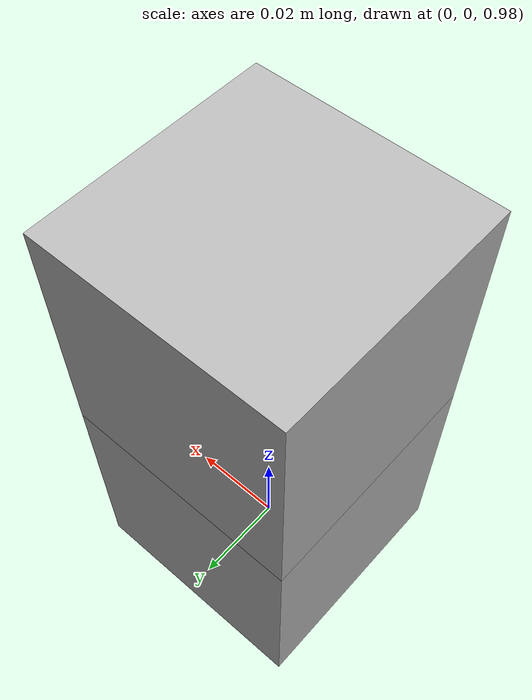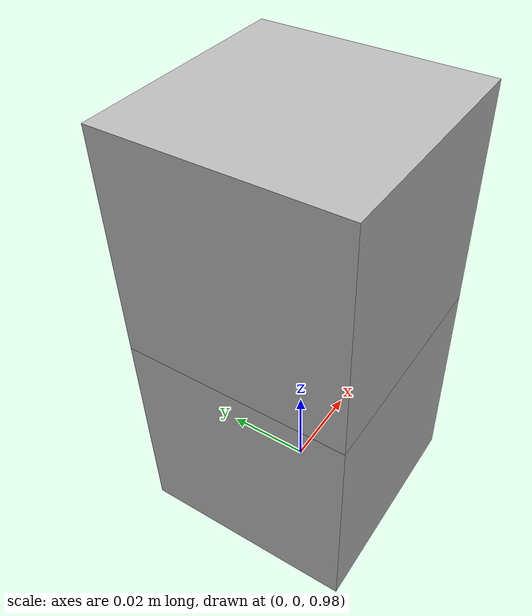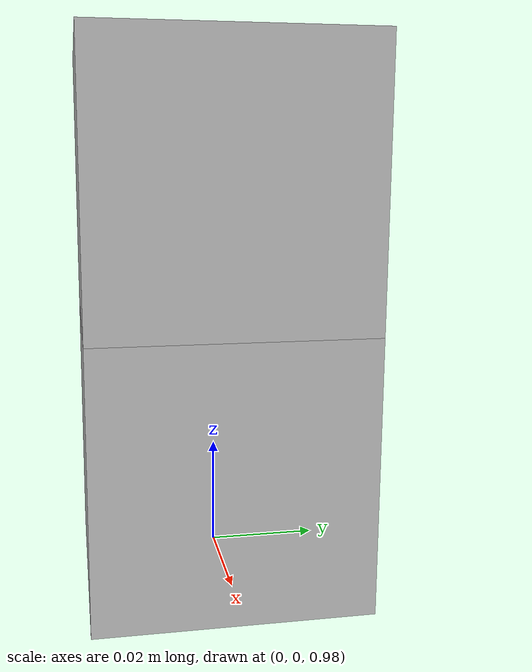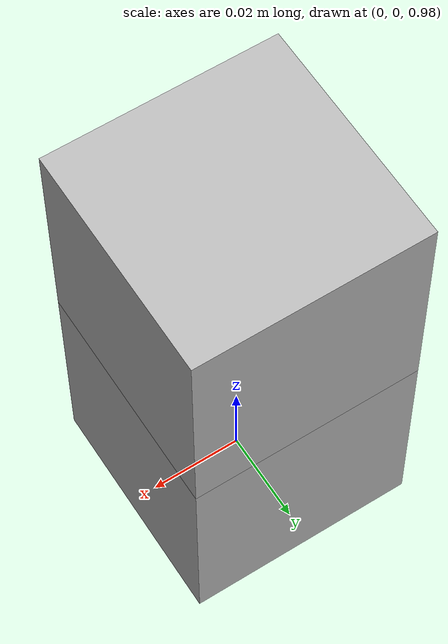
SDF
<?xml version="1.0" ?>
<sdf version="1.5">
  <model name="breakable_test">
    <pose>0 0 1 0 0 0</pose>
    <link name="link_0_0">
      <pose>0.0 0 0.0 0 0 0</pose>
      <inertial>
        <mass>0.3375</mass>
        <inertia>
          <ixx>0.00014062500000000004</ixx>
          <iyy>0.00014062500000000004</iyy>
          <izz>0.00014062500000000004</izz>
          <ixy>0.0</ixy>
          <ixz>0.0</ixz>
          <iyz>0.0</iyz>
        </inertia>
      </inertial>
      <collision name="collision">
        <geometry>
          <box>
            <size>0.05 0.05 0.05</size>
          </box>
        </geometry>
      </collision>
      <visual name="visual">
        <geometry>
          <box>
            <size>0.05 0.05 0.05</size>
          </box>
        </geometry>
      </visual>
    </link>
    <joint name="joint_0_0" type="revolute">
      <parent>world</parent>
      <child>link_0_0</child>
      <axis>
        <xyz>0 0 1</xyz>
        <limit>
          <lower>0.0</lower>
          <upper>0.0</upper>
        </limit>
        <use_parent_model_frame>true</use_parent_model_frame>
      </axis>
      <physics>
        <ode>
          <erp>1</erp>
          <cfm>1</cfm>
        </ode>
      </physics>
      <sensor name="force_torque" type="force_torque">
        <always_on>true</always_on>
        <update_rate>1000</update_rate>
        <plugin name="breakable_0_0" filename="libBreakableJointPlugin.so">
          <breaking_force_N>50</breaking_force_N>
        </plugin>
      </sensor>
    </joint>
    <link name="link_0_1">
      <pose>0.0 0 0.05 0 0 0</pose>
      <inertial>
        <mass>0.3375</mass>
        <inertia>
          <ixx>0.00014062500000000004</ixx>
          <iyy>0.00014062500000000004</iyy>
          <izz>0.00014062500000000004</izz>
          <ixy>0.0</ixy>
          <ixz>0.0</ixz>
          <iyz>0.0</iyz>
        </inertia>
      </inertial>
      <collision name="collision">
        <geometry>
          <box>
            <size>0.05 0.05 0.05</size>
          </box>
        </geometry>
      </collision>
      <visual name="visual">
        <geometry>
          <box>
            <size>0.05 0.05 0.05</size>
          </box>
        </geometry>
      </visual>
    </link>
    <joint name="joint_0_1" type="revolute">
      <parent>world</parent>
      <child>link_0_1</child>
      <axis>
        <xyz>0 0 1</xyz>
        <limit>
          <lower>0.0</lower>
          <upper>0.0</upper>
        </limit>
        <use_parent_model_frame>true</use_parent_model_frame>
      </axis>
      <physics>
        <ode>
          <erp>1</erp>
          <cfm>1</cfm>
        </ode>
      </physics>
      <sensor name="force_torque" type="force_torque">
        <always_on>true</always_on>
        <update_rate>1000</update_rate>
        <plugin name="breakable_0_1" filename="libBreakableJointPlugin.so">
          <breaking_force_N>50</breaking_force_N>
        </plugin>
      </sensor>
    </joint>
  </model>
</sdf>
